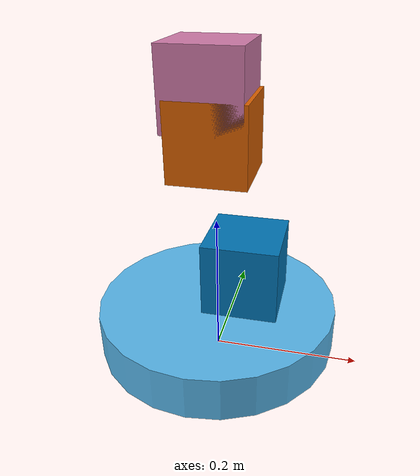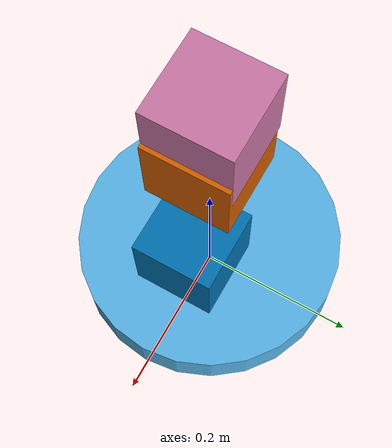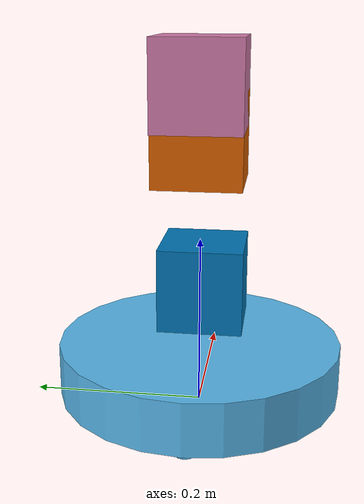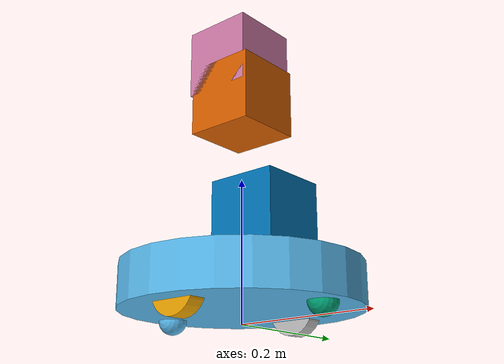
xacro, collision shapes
<?xml version="1.0" ?>
<robot name="create_2"
	xmlns:sensor="http://playerstage.sourceforge.net/gazebo/xmlschema/#sensor"
    xmlns:controller="http://playerstage.sourceforge.net/gazebo/xmlschema/#controller"
    xmlns:interface="http://playerstage.sourceforge.net/gazebo/xmlschema/#interface"
	xmlns:xacro="http://ros.org/wiki/xacro">
  <xacro:include filename="$(find ca_description)/urdf/create_base.urdf.xacro" />
  <xacro:include filename="$(find ca_description)/urdf/create_2_gazebo.urdf.xacro" />

  <xacro:create_base wheel_separation="0.235" base_diameter="0.3485">
    <mesh filename="package://ca_description/meshes/create_2.dae" />
  </xacro:create_base>
</robot>

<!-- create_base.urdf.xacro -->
<robot xmlns:xacro="http://ros.org/wiki/xacro">
  <xacro:property name="PI" value="3.1415926535897931" />

  <xacro:macro name="create_wheel" params="prefix y_offset wheel_radius wheel_width">
    <link name="${prefix}_wheel_link">
    <inertial>
      <origin xyz="0 0 0" />
      <mass value="0.01" />
      <inertia ixx="0.001" ixy="0.0" ixz="0.0" iyy="0.001" iyz="0.0" izz="0.001" />
    </inertial>

    <visual>
      <origin xyz="0 0 0" rpy="0 ${PI/2} ${PI/2}" />
      <geometry>
        <cylinder radius="${wheel_radius}" length="${wheel_width}" />
      </geometry>
    </visual>

    <collision>
      <origin xyz="0 0 0" rpy="0 ${PI/2} ${PI/2}" />
      <geometry>
        <cylinder radius="${wheel_radius}" length="${wheel_width}" />
      </geometry>
    </collision>
    </link>

   <joint name="${prefix}_wheel_joint" type="continuous">
      <origin xyz="0 ${y_offset} 0.015" rpy="0 0 0" />
      <parent link="base_link" />
      <child link="${prefix}_wheel_link" />
      <axis xyz="0 1 0" />
    </joint>
  </xacro:macro>

  <xacro:macro name="create_base" params="diffdrive_update_rate:=40 wheel_separation wheel_radius:=0.036 wheel_width:=0.024 wheel_torque:=1.0 wheel_accel:=1.8 mass_kg:=3.5 base_diameter *mesh">
    <xacro:include filename="$(find ca_description)/urdf/create_base_gazebo.urdf.xacro" />

    <link name="base_footprint">
    <visual>
      <origin xyz="0 0 0" rpy="0 0 0" />
      <geometry>
        <box size="0.001 0.001 0.001" />
      </geometry>
      <material name="Green" />
    </visual>

    <collision>
      <origin xyz="0 0 0.017" rpy="0 0 0" />
      <geometry>
        <box size="0.001 0.001 0.001" />
      </geometry>
    </collision>
    </link>

    <link name="base_link">
    <inertial>
      <mass value="2" />
      <origin xyz="0 0 0.0" />
      <inertia ixx="0.01" ixy="0.0" ixz="0.0" iyy="0.01" iyz="0.0" izz="0.5" />
    </inertial>

    <visual>
      <origin xyz=" 0 0 0.0308" rpy="0 0 0" />
      <geometry>
        <xacro:insert_block name="mesh" />
      </geometry>
    </visual>

    <collision>
      <origin xyz="0.0 0.0 0.0308" rpy="0 0 0" />
      <geometry>
        <cylinder length="0.0611632" radius="0.16495" />
      </geometry>
    </collision>
    </link>

    <link name="wall_sensor_link">
    <inertial>
      <mass value="0.01" />
      <origin xyz="0 0 0" />
      <inertia ixx="0.001" ixy="0.0" ixz="0.0" iyy="0.001" iyz="0.0" izz="0.001" />
    </inertial>
    </link>

    <link name="left_cliff_sensor_link">
    <inertial>
      <mass value="0.01" />
      <origin xyz="0 0 0" />
      <inertia ixx="0.001" ixy="0.0" ixz="0.0" iyy="0.001" iyz="0.0" izz="0.001" />
    </inertial>
    </link>

    <link name="right_cliff_sensor_link">
    <inertial>
      <mass value="0.01" />
      <origin xyz="0 0 0" />
      <inertia ixx="0.001" ixy="0.0" ixz="0.0" iyy="0.001" iyz="0.0" izz="0.001" />
    </inertial>
    </link>

    <link name="leftfront_cliff_sensor_link">
    <inertial>
      <mass value="0.01" />
      <origin xyz="0 0 0" />
      <inertia ixx="1.0" ixy="0.0" ixz="0.0" iyy="0.01" iyz="0.0" izz="0.01" />
    </inertial>
    </link>

    <link name="rightfront_cliff_sensor_link">
    <inertial>
      <mass value="0.01" />
      <origin xyz="0 0 0" />
      <inertia ixx="0.001" ixy="0.0" ixz="0.0" iyy="0.001" iyz="0.0" izz="0.001" />
    </inertial>
    </link>

    <joint name="base_footprint_joint" type="fixed">
      <origin xyz="0 0 0.017" rpy="0 0 0" />
      <parent link="base_footprint" />
      <child link="base_link" />
    </joint>

    <joint name="base_wall_sensor_joint" type="fixed">
      <origin xyz="0.09 -0.120 0.042" rpy="0 0 -1.0" />
      <parent link="base_link" />
      <child link="wall_sensor_link" />
    </joint>

    <joint name="base_left_cliff_sensor_joint" type="fixed">
      <origin xyz="0.07 0.14 0.01" rpy="0 ${PI/2} 0" />
      <parent link="base_link" />
      <child link="left_cliff_sensor_link" />
    </joint>

    <joint name="base_right_cliff_sensor_joint" type="fixed">
      <origin xyz="0.07 -0.14 0.01" rpy="0 ${PI/2} 0" />
      <parent link="base_link" />
      <child link="right_cliff_sensor_link" />
    </joint>

    <joint name="base_leftfront_cliff_sensor_joint" type="fixed">
      <origin xyz="0.15 0.04 0.01" rpy="0 ${PI/2} 0" />
      <parent link="base_link" />
      <child link="leftfront_cliff_sensor_link" />
    </joint>

    <joint name="base_rightfront_cliff_sensor_joint" type="fixed">
      <origin xyz="0.15 -0.04 0.01" rpy="0 ${PI/2} 0" />
      <parent link="base_link" />
      <child link="rightfront_cliff_sensor_link" />
    </joint>

    <xacro:create_wheel prefix="left" y_offset="${wheel_separation / 2}" wheel_radius="${wheel_radius}" wheel_width="${wheel_width}"/>
    <xacro:create_wheel prefix="right" y_offset="${wheel_separation / -2}" wheel_radius="${wheel_radius}" wheel_width="${wheel_width}"/>

    <link name="rear_wheel_link">
    <inertial>
      <origin xyz="0 0 0"/>
      <mass value="0.001" />
      <inertia ixx="0.0001" ixy="0.0" ixz="0.0"
        iyy="0.0001" iyz="0.0" izz="0.0001" />
    </inertial>

    <visual>
      <origin xyz="0 0 0" rpy="0 ${PI/2} ${PI/2}"/>
      <geometry>
        <sphere radius="0.020" />
      </geometry>
    </visual>

    <collision>
      <origin xyz="0 0 0" rpy="0 ${PI/2} ${PI/2}" />
      <geometry>
        <sphere radius="0.020" />
      </geometry>
    </collision>
    </link>
    <joint name="rear_castor_joint" type="fixed">
      <origin xyz="-0.13 0 0.0" rpy="0 0 0"/>
      <parent link="base_link"/>
      <child link="rear_wheel_link"/>
      <axis xyz="0 1 0"/>
    </joint>

    <link name="front_wheel_link">
    <inertial>
      <origin xyz="0 0 0" />
      <mass value="0.01" />
      <inertia ixx="0.001" ixy="0.0" ixz="0.0" iyy="0.001" iyz="0.0" izz="0.001" />
    </inertial>

    <visual>
      <origin xyz="0 0 0" rpy="0 ${PI/2} ${PI/2}" />
      <geometry>
        <sphere radius="0.020" />
      </geometry>
    </visual>

    <collision>
      <origin xyz="0 0 0" rpy="0 ${PI/2} ${PI/2}" />
      <geometry>
        <sphere radius="0.020" />
      </geometry>
    </collision>
    </link>

    <!-- fixed because there's no transmission -->
    <joint name="front_castor_joint" type="fixed">
      <origin xyz="0.13 0 0.0" rpy="0 0 0" />
      <parent link="base_link" />
      <child link="front_wheel_link" />
      <axis xyz="0 1 0" />
    </joint>

    <joint name="gyro_joint" type="fixed">
      <axis xyz="0 1 0" />
      <origin xyz="0 0 0.04" rpy="0 0 0" />
      <parent link="base_link" />
      <child link="gyro_link" />
    </joint>
    <link name="gyro_link">
    <inertial>
      <mass value="0.001" />
      <origin xyz="0 0 0" rpy="0 0 0" />
      <inertia ixx="0.0001" ixy="0" ixz="0" iyy="0.000001" iyz="0" izz="0.0001" />
    </inertial>
    </link>

    <joint name="laser_joint" type="fixed">
    <origin xyz="0.04 0 0.12" rpy="0 0 0" />
    <parent link="base_link" />
    <child link="base_laser_link" />
    </joint>

    <link name="base_laser_link">

    <collision>
      <origin xyz="0 0 0" rpy="0 0 0"/>
      <geometry>
    <box size="0.1 0.1 0.1"/>
      </geometry>
    </collision>

    <visual>
      <origin xyz="0 0 0" rpy="0 0 0"/>
      <geometry>
        <mesh filename="package://rrt_exploration_tutorials/launch/includes/meshes/hokuyo.dae"/>
      </geometry>
    </visual>

    <inertial>
      <mass value="1e-5" />
      <origin xyz="0 0 1" rpy="0 0 0"/>
      <inertia ixx="1e-6" ixy="0" ixz="0" iyy="1e-6" iyz="0" izz="1e-6" />
    </inertial>
   </link>

   <link name="platform">
    <inertial>
      <mass value="1e-5" />
      <origin xyz="0 0 0" rpy="0 0 0"/>
      <inertia ixx="1e-6" ixy="0" ixz="0" iyy="1e-6" iyz="0" izz="1e-6" />
    </inertial>
    <visual>
      <origin xyz="0 0 0" rpy="0 0 1.57079632" />
      <geometry>
        <box size="0.1 0.1 0.1"/>
      </geometry>
    </visual>
    <collision>
      <origin xyz="0 0 0" rpy="0 0 0" />
      <geometry>
        <box size="0.1 0.1 0.1"/>
      </geometry>
    </collision>
  </link>

  <joint name="base_to_platform" type="fixed">
    <parent link="base_link"/>
    <child link="platform"/>
    <origin rpy="0 0 0" xyz="0 0 0.3"/>
  </joint>

  <!-- Camera -->
  <link name="camera_link">
    <collision>
      <origin xyz="0 0 0" rpy="0 0 0"/>
      <geometry>
        <box size="0.1 0.1 0.1"/>
      </geometry>
    </collision>
    <visual>
      <origin xyz="0 0 0" rpy="0 0 0"/>
      <geometry>
        <mesh filename="package://robot_sim_demo/models/meshes/realsense.dae" />
      </geometry>
    </visual>
    <inertial>
      <mass value="1e-5" />
      <origin xyz="0 0 0" rpy="0 0 0"/>
      <inertia ixx="1e-6" ixy="0" ixz="0" iyy="1e-6" iyz="0" izz="1e-6" />
    </inertial>
  </link>

  <joint name="camera_joint" type="fixed">
    <origin xyz="-0.005 0 .06" rpy="0 0 0"/>
    <parent link="platform"/>
    <child link="camera_link"/>
  </joint>

  <!-- generate an optical frame http://www.ros.org/reps/rep-0103.html#suffix-frames
      so that ros and opencv can operate on the camera frame correctly -->
  <joint name="camera_optical_joint" type="fixed">
    <!-- these values have to be these values otherwise the gazebo camera image
        won't be aligned properly with the frame it is supposedly originating from -->
    <origin xyz="0 0 0" rpy="-1.5708 0 -1.5708"/>
    <parent link="camera_link"/>
    <child link="camera_link_optical"/>
  </joint>

  <link name="camera_link_optical">
  </link>

    <!-- Simulation sensors -->
    <xacro:sim_create_base/>
    <xacro:sim_create_wall_sensor/>
    <xacro:sim_create_cliff_sensors/>
    <xacro:sim_imu/>
  </xacro:macro>
</robot>
